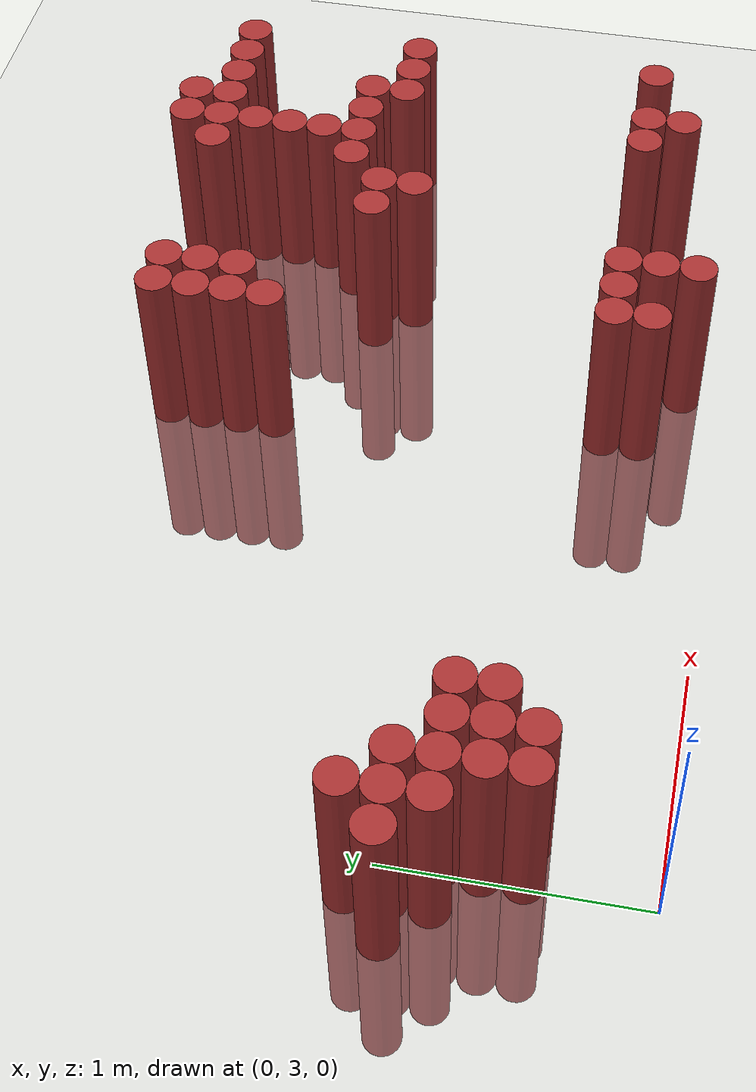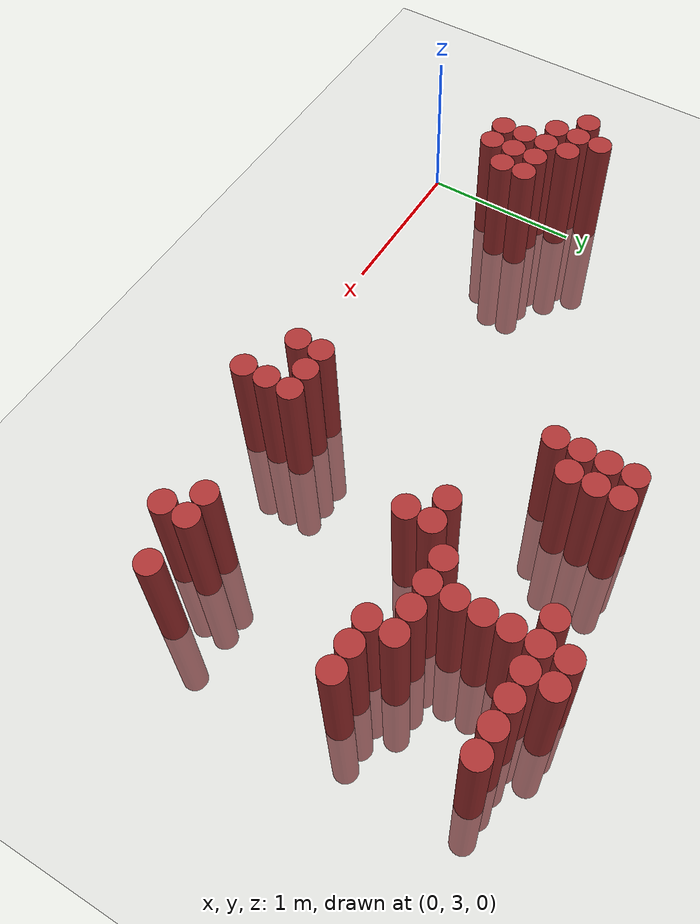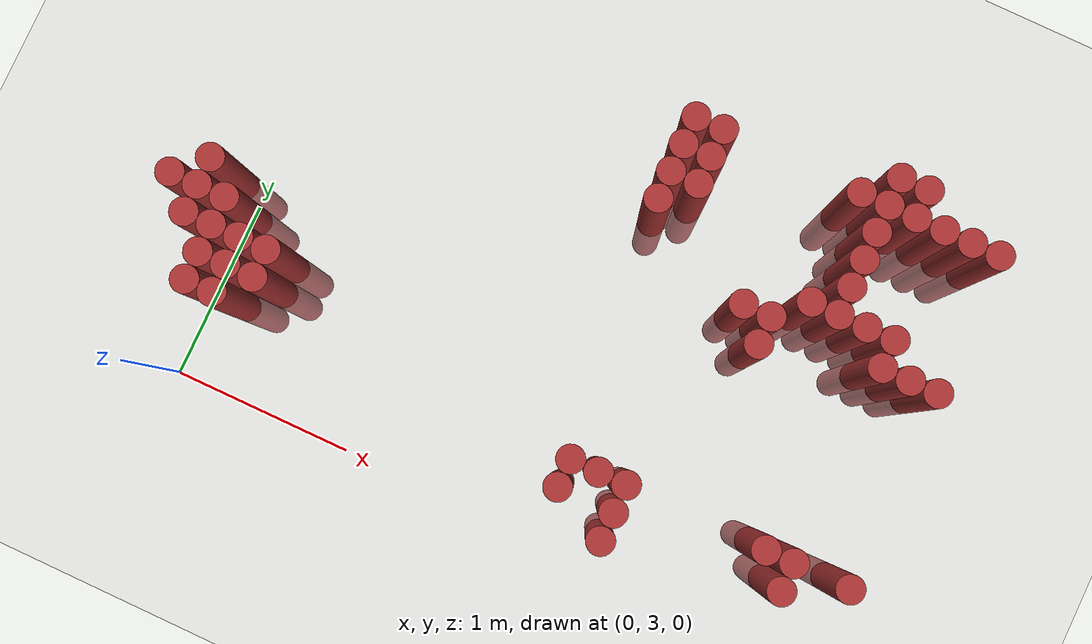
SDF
<sdf version="1.6">
 <world name="default">
  <model name="ground_plane">
   <static>1</static>
   <link name="link">
    <collision name="collision">
     <geometry><plane><normal>0 0 1</normal><size>100 100</size></plane></geometry>
     <surface><friction><ode><mu>100</mu><mu2>50</mu2></ode></friction></surface>
    </collision>
    <visual name="visual">
     <cast_shadows>0</cast_shadows>
     <geometry><plane><normal>0 0 1</normal><size>100 100</size></plane></geometry>
     <material>
      <script><uri>file://media/materials/scripts/gazebo.material</uri><name>Gazebo/Grey</name></script>
     </material>
    </visual>
   </link>
  </model>
  <model name="unit_cylinder_413">
   <static>1</static>
   <pose>-0.275000 3.925000 0.000000 0.000000 0.000000 0.000000</pose>
   <link name="link">
    <inertial>
     <mass>1</mass>
     <inertia><ixx>0.145833</ixx><ixy>0</ixy><ixz>0</ixz><iyy>0.145833</iyy><iyz>0</iyz><izz>0.125</izz></inertia>
    </inertial>
    <collision name="collision">
     <geometry><cylinder><radius>0.075000</radius><length>1.5</length></cylinder></geometry>
    </collision>
    <visual name="visual">
     <geometry><cylinder><radius>0.075000</radius><length>1.5</length></cylinder></geometry>
     <material>
      <ambient>0.648000 0.192000 0.192000 1</ambient>
      <diffuse>0.648000 0.192000 0.192000 1</diffuse>
     </material>
     <material>
      <script><name>Gazebo/Grey</name><uri>file://media/materials/scripts/gazebo.material</uri></script>
     </material>
    </visual>
   </link>
  </model>
  <model name="unit_cylinder_424">
   <static>1</static>
   <pose>-0.125000 3.775000 0.000000 0.000000 0.000000 0.000000</pose>
   <link name="link">
    <inertial>
     <mass>1</mass>
     <inertia><ixx>0.145833</ixx><ixy>0</ixy><ixz>0</ixz><iyy>0.145833</iyy><iyz>0</iyz><izz>0.125</izz></inertia>
    </inertial>
    <collision name="collision">
     <geometry><cylinder><radius>0.075000</radius><length>1.5</length></cylinder></geometry>
    </collision>
    <visual name="visual">
     <geometry><cylinder><radius>0.075000</radius><length>1.5</length></cylinder></geometry>
     <material>
      <ambient>0.648000 0.192000 0.192000 1</ambient>
      <diffuse>0.648000 0.192000 0.192000 1</diffuse>
     </material>
     <material>
      <script><name>Gazebo/Grey</name><uri>file://media/materials/scripts/gazebo.material</uri></script>
     </material>
    </visual>
   </link>
  </model>
  <model name="unit_cylinder_425">
   <static>1</static>
   <pose>-0.125000 3.925000 0.000000 0.000000 0.000000 0.000000</pose>
   <link name="link">
    <inertial>
     <mass>1</mass>
     <inertia><ixx>0.145833</ixx><ixy>0</ixy><ixz>0</ixz><iyy>0.145833</iyy><iyz>0</iyz><izz>0.125</izz></inertia>
    </inertial>
    <collision name="collision">
     <geometry><cylinder><radius>0.075000</radius><length>1.5</length></cylinder></geometry>
    </collision>
    <visual name="visual">
     <geometry><cylinder><radius>0.075000</radius><length>1.5</length></cylinder></geometry>
     <material>
      <ambient>0.648000 0.192000 0.192000 1</ambient>
      <diffuse>0.648000 0.192000 0.192000 1</diffuse>
     </material>
     <material>
      <script><name>Gazebo/Grey</name><uri>file://media/materials/scripts/gazebo.material</uri></script>
     </material>
    </visual>
   </link>
  </model>
  <model name="unit_cylinder_426">
   <static>1</static>
   <pose>-0.125000 4.075000 0.000000 0.000000 0.000000 0.000000</pose>
   <link name="link">
    <inertial>
     <mass>1</mass>
     <inertia><ixx>0.145833</ixx><ixy>0</ixy><ixz>0</ixz><iyy>0.145833</iyy><iyz>0</iyz><izz>0.125</izz></inertia>
    </inertial>
    <collision name="collision">
     <geometry><cylinder><radius>0.075000</radius><length>1.5</length></cylinder></geometry>
    </collision>
    <visual name="visual">
     <geometry><cylinder><radius>0.075000</radius><length>1.5</length></cylinder></geometry>
     <material>
      <ambient>0.648000 0.192000 0.192000 1</ambient>
      <diffuse>0.648000 0.192000 0.192000 1</diffuse>
     </material>
     <material>
      <script><name>Gazebo/Grey</name><uri>file://media/materials/scripts/gazebo.material</uri></script>
     </material>
    </visual>
   </link>
  </model>
  <model name="unit_cylinder_438">
   <static>1</static>
   <pose>0.025000 3.475000 0.000000 0.000000 0.000000 0.000000</pose>
   <link name="link">
    <inertial>
     <mass>1</mass>
     <inertia><ixx>0.145833</ixx><ixy>0</ixy><ixz>0</ixz><iyy>0.145833</iyy><iyz>0</iyz><izz>0.125</izz></inertia>
    </inertial>
    <collision name="collision">
     <geometry><cylinder><radius>0.075000</radius><length>1.5</length></cylinder></geometry>
    </collision>
    <visual name="visual">
     <geometry><cylinder><radius>0.075000</radius><length>1.5</length></cylinder></geometry>
     <material>
      <ambient>0.648000 0.192000 0.192000 1</ambient>
      <diffuse>0.648000 0.192000 0.192000 1</diffuse>
     </material>
     <material>
      <script><name>Gazebo/Grey</name><uri>file://media/materials/scripts/gazebo.material</uri></script>
     </material>
    </visual>
   </link>
  </model>
  <model name="unit_cylinder_439">
   <static>1</static>
   <pose>0.025000 3.625000 0.000000 0.000000 0.000000 0.000000</pose>
   <link name="link">
    <inertial>
     <mass>1</mass>
     <inertia><ixx>0.145833</ixx><ixy>0</ixy><ixz>0</ixz><iyy>0.145833</iyy><iyz>0</iyz><izz>0.125</izz></inertia>
    </inertial>
    <collision name="collision">
     <geometry><cylinder><radius>0.075000</radius><length>1.5</length></cylinder></geometry>
    </collision>
    <visual name="visual">
     <geometry><cylinder><radius>0.075000</radius><length>1.5</length></cylinder></geometry>
     <material>
      <ambient>0.648000 0.192000 0.192000 1</ambient>
      <diffuse>0.648000 0.192000 0.192000 1</diffuse>
     </material>
     <material>
      <script><name>Gazebo/Grey</name><uri>file://media/materials/scripts/gazebo.material</uri></script>
     </material>
    </visual>
   </link>
  </model>
  <model name="unit_cylinder_440">
   <static>1</static>
   <pose>0.025000 3.775000 0.000000 0.000000 0.000000 0.000000</pose>
   <link name="link">
    <inertial>
     <mass>1</mass>
     <inertia><ixx>0.145833</ixx><ixy>0</ixy><ixz>0</ixz><iyy>0.145833</iyy><iyz>0</iyz><izz>0.125</izz></inertia>
    </inertial>
    <collision name="collision">
     <geometry><cylinder><radius>0.075000</radius><length>1.5</length></cylinder></geometry>
    </collision>
    <visual name="visual">
     <geometry><cylinder><radius>0.075000</radius><length>1.5</length></cylinder></geometry>
     <material>
      <ambient>0.648000 0.192000 0.192000 1</ambient>
      <diffuse>0.648000 0.192000 0.192000 1</diffuse>
     </material>
     <material>
      <script><name>Gazebo/Grey</name><uri>file://media/materials/scripts/gazebo.material</uri></script>
     </material>
    </visual>
   </link>
  </model>
  <model name="unit_cylinder_441">
   <static>1</static>
   <pose>0.025000 3.925000 0.000000 0.000000 0.000000 0.000000</pose>
   <link name="link">
    <inertial>
     <mass>1</mass>
     <inertia><ixx>0.145833</ixx><ixy>0</ixy><ixz>0</ixz><iyy>0.145833</iyy><iyz>0</iyz><izz>0.125</izz></inertia>
    </inertial>
    <collision name="collision">
     <geometry><cylinder><radius>0.075000</radius><length>1.5</length></cylinder></geometry>
    </collision>
    <visual name="visual">
     <geometry><cylinder><radius>0.075000</radius><length>1.5</length></cylinder></geometry>
     <material>
      <ambient>0.648000 0.192000 0.192000 1</ambient>
      <diffuse>0.648000 0.192000 0.192000 1</diffuse>
     </material>
     <material>
      <script><name>Gazebo/Grey</name><uri>file://media/materials/scripts/gazebo.material</uri></script>
     </material>
    </visual>
   </link>
  </model>
  <model name="unit_cylinder_446">
   <static>1</static>
   <pose>0.175000 3.475000 0.000000 0.000000 0.000000 0.000000</pose>
   <link name="link">
    <inertial>
     <mass>1</mass>
     <inertia><ixx>0.145833</ixx><ixy>0</ixy><ixz>0</ixz><iyy>0.145833</iyy><iyz>0</iyz><izz>0.125</izz></inertia>
    </inertial>
    <collision name="collision">
     <geometry><cylinder><radius>0.075000</radius><length>1.5</length></cylinder></geometry>
    </collision>
    <visual name="visual">
     <geometry><cylinder><radius>0.075000</radius><length>1.5</length></cylinder></geometry>
     <material>
      <ambient>0.648000 0.192000 0.192000 1</ambient>
      <diffuse>0.648000 0.192000 0.192000 1</diffuse>
     </material>
     <material>
      <script><name>Gazebo/Grey</name><uri>file://media/materials/scripts/gazebo.material</uri></script>
     </material>
    </visual>
   </link>
  </model>
  <model name="unit_cylinder_447">
   <static>1</static>
   <pose>0.175000 3.625000 0.000000 0.000000 0.000000 0.000000</pose>
   <link name="link">
    <inertial>
     <mass>1</mass>
     <inertia><ixx>0.145833</ixx><ixy>0</ixy><ixz>0</ixz><iyy>0.145833</iyy><iyz>0</iyz><izz>0.125</izz></inertia>
    </inertial>
    <collision name="collision">
     <geometry><cylinder><radius>0.075000</radius><length>1.5</length></cylinder></geometry>
    </collision>
    <visual name="visual">
     <geometry><cylinder><radius>0.075000</radius><length>1.5</length></cylinder></geometry>
     <material>
      <ambient>0.648000 0.192000 0.192000 1</ambient>
      <diffuse>0.648000 0.192000 0.192000 1</diffuse>
     </material>
     <material>
      <script><name>Gazebo/Grey</name><uri>file://media/materials/scripts/gazebo.material</uri></script>
     </material>
    </visual>
   </link>
  </model>
  <model name="unit_cylinder_448">
   <static>1</static>
   <pose>0.175000 3.775000 0.000000 0.000000 0.000000 0.000000</pose>
   <link name="link">
    <inertial>
     <mass>1</mass>
     <inertia><ixx>0.145833</ixx><ixy>0</ixy><ixz>0</ixz><iyy>0.145833</iyy><iyz>0</iyz><izz>0.125</izz></inertia>
    </inertial>
    <collision name="collision">
     <geometry><cylinder><radius>0.075000</radius><length>1.5</length></cylinder></geometry>
    </collision>
    <visual name="visual">
     <geometry><cylinder><radius>0.075000</radius><length>1.5</length></cylinder></geometry>
     <material>
      <ambient>0.648000 0.192000 0.192000 1</ambient>
      <diffuse>0.648000 0.192000 0.192000 1</diffuse>
     </material>
     <material>
      <script><name>Gazebo/Grey</name><uri>file://media/materials/scripts/gazebo.material</uri></script>
     </material>
    </visual>
   </link>
  </model>
  <model name="unit_cylinder_450">
   <static>1</static>
   <pose>0.325000 3.625000 0.000000 0.000000 0.000000 0.000000</pose>
   <link name="link">
    <inertial>
     <mass>1</mass>
     <inertia><ixx>0.145833</ixx><ixy>0</ixy><ixz>0</ixz><iyy>0.145833</iyy><iyz>0</iyz><izz>0.125</izz></inertia>
    </inertial>
    <collision name="collision">
     <geometry><cylinder><radius>0.075000</radius><length>1.5</length></cylinder></geometry>
    </collision>
    <visual name="visual">
     <geometry><cylinder><radius>0.075000</radius><length>1.5</length></cylinder></geometry>
     <material>
      <ambient>0.648000 0.192000 0.192000 1</ambient>
      <diffuse>0.648000 0.192000 0.192000 1</diffuse>
     </material>
     <material>
      <script><name>Gazebo/Grey</name><uri>file://media/materials/scripts/gazebo.material</uri></script>
     </material>
    </visual>
   </link>
  </model>
  <model name="unit_cylinder_451">
   <static>1</static>
   <pose>0.325000 3.775000 0.000000 0.000000 0.000000 0.000000</pose>
   <link name="link">
    <inertial>
     <mass>1</mass>
     <inertia><ixx>0.145833</ixx><ixy>0</ixy><ixz>0</ixz><iyy>0.145833</iyy><iyz>0</iyz><izz>0.125</izz></inertia>
    </inertial>
    <collision name="collision">
     <geometry><cylinder><radius>0.075000</radius><length>1.5</length></cylinder></geometry>
    </collision>
    <visual name="visual">
     <geometry><cylinder><radius>0.075000</radius><length>1.5</length></cylinder></geometry>
     <material>
      <ambient>0.648000 0.192000 0.192000 1</ambient>
      <diffuse>0.648000 0.192000 0.192000 1</diffuse>
     </material>
     <material>
      <script><name>Gazebo/Grey</name><uri>file://media/materials/scripts/gazebo.material</uri></script>
     </material>
    </visual>
   </link>
  </model>
  <model name="unit_cylinder_470">
   <static>1</static>
   <pose>1.975000 4.825000 0.000000 0.000000 0.000000 0.000000</pose>
   <link name="link">
    <inertial>
     <mass>1</mass>
     <inertia><ixx>0.145833</ixx><ixy>0</ixy><ixz>0</ixz><iyy>0.145833</iyy><iyz>0</iyz><izz>0.125</izz></inertia>
    </inertial>
    <collision name="collision">
     <geometry><cylinder><radius>0.075000</radius><length>1.5</length></cylinder></geometry>
    </collision>
    <visual name="visual">
     <geometry><cylinder><radius>0.075000</radius><length>1.5</length></cylinder></geometry>
     <material>
      <ambient>0.648000 0.192000 0.192000 1</ambient>
      <diffuse>0.648000 0.192000 0.192000 1</diffuse>
     </material>
     <material>
      <script><name>Gazebo/Grey</name><uri>file://media/materials/scripts/gazebo.material</uri></script>
     </material>
    </visual>
   </link>
  </model>
  <model name="unit_cylinder_471">
   <static>1</static>
   <pose>1.975000 4.975000 0.000000 0.000000 0.000000 0.000000</pose>
   <link name="link">
    <inertial>
     <mass>1</mass>
     <inertia><ixx>0.145833</ixx><ixy>0</ixy><ixz>0</ixz><iyy>0.145833</iyy><iyz>0</iyz><izz>0.125</izz></inertia>
    </inertial>
    <collision name="collision">
     <geometry><cylinder><radius>0.075000</radius><length>1.5</length></cylinder></geometry>
    </collision>
    <visual name="visual">
     <geometry><cylinder><radius>0.075000</radius><length>1.5</length></cylinder></geometry>
     <material>
      <ambient>0.648000 0.192000 0.192000 1</ambient>
      <diffuse>0.648000 0.192000 0.192000 1</diffuse>
     </material>
     <material>
      <script><name>Gazebo/Grey</name><uri>file://media/materials/scripts/gazebo.material</uri></script>
     </material>
    </visual>
   </link>
  </model>
  <model name="unit_cylinder_472">
   <static>1</static>
   <pose>1.975000 5.125000 0.000000 0.000000 0.000000 0.000000</pose>
   <link name="link">
    <inertial>
     <mass>1</mass>
     <inertia><ixx>0.145833</ixx><ixy>0</ixy><ixz>0</ixz><iyy>0.145833</iyy><iyz>0</iyz><izz>0.125</izz></inertia>
    </inertial>
    <collision name="collision">
     <geometry><cylinder><radius>0.075000</radius><length>1.5</length></cylinder></geometry>
    </collision>
    <visual name="visual">
     <geometry><cylinder><radius>0.075000</radius><length>1.5</length></cylinder></geometry>
     <material>
      <ambient>0.648000 0.192000 0.192000 1</ambient>
      <diffuse>0.648000 0.192000 0.192000 1</diffuse>
     </material>
     <material>
      <script><name>Gazebo/Grey</name><uri>file://media/materials/scripts/gazebo.material</uri></script>
     </material>
    </visual>
   </link>
  </model>
  <model name="unit_cylinder_473">
   <static>1</static>
   <pose>1.975000 5.275000 0.000000 0.000000 0.000000 0.000000</pose>
   <link name="link">
    <inertial>
     <mass>1</mass>
     <inertia><ixx>0.145833</ixx><ixy>0</ixy><ixz>0</ixz><iyy>0.145833</iyy><iyz>0</iyz><izz>0.125</izz></inertia>
    </inertial>
    <collision name="collision">
     <geometry><cylinder><radius>0.075000</radius><length>1.5</length></cylinder></geometry>
    </collision>
    <visual name="visual">
     <geometry><cylinder><radius>0.075000</radius><length>1.5</length></cylinder></geometry>
     <material>
      <ambient>0.648000 0.192000 0.192000 1</ambient>
      <diffuse>0.648000 0.192000 0.192000 1</diffuse>
     </material>
     <material>
      <script><name>Gazebo/Grey</name><uri>file://media/materials/scripts/gazebo.material</uri></script>
     </material>
    </visual>
   </link>
  </model>
  <model name="unit_cylinder_477">
   <static>1</static>
   <pose>2.125000 3.325000 0.000000 0.000000 0.000000 0.000000</pose>
   <link name="link">
    <inertial>
     <mass>1</mass>
     <inertia><ixx>0.145833</ixx><ixy>0</ixy><ixz>0</ixz><iyy>0.145833</iyy><iyz>0</iyz><izz>0.125</izz></inertia>
    </inertial>
    <collision name="collision">
     <geometry><cylinder><radius>0.075000</radius><length>1.5</length></cylinder></geometry>
    </collision>
    <visual name="visual">
     <geometry><cylinder><radius>0.075000</radius><length>1.5</length></cylinder></geometry>
     <material>
      <ambient>0.648000 0.192000 0.192000 1</ambient>
      <diffuse>0.648000 0.192000 0.192000 1</diffuse>
     </material>
     <material>
      <script><name>Gazebo/Grey</name><uri>file://media/materials/scripts/gazebo.material</uri></script>
     </material>
    </visual>
   </link>
  </model>
  <model name="unit_cylinder_478">
   <static>1</static>
   <pose>2.125000 3.475000 0.000000 0.000000 0.000000 0.000000</pose>
   <link name="link">
    <inertial>
     <mass>1</mass>
     <inertia><ixx>0.145833</ixx><ixy>0</ixy><ixz>0</ixz><iyy>0.145833</iyy><iyz>0</iyz><izz>0.125</izz></inertia>
    </inertial>
    <collision name="collision">
     <geometry><cylinder><radius>0.075000</radius><length>1.5</length></cylinder></geometry>
    </collision>
    <visual name="visual">
     <geometry><cylinder><radius>0.075000</radius><length>1.5</length></cylinder></geometry>
     <material>
      <ambient>0.648000 0.192000 0.192000 1</ambient>
      <diffuse>0.648000 0.192000 0.192000 1</diffuse>
     </material>
     <material>
      <script><name>Gazebo/Grey</name><uri>file://media/materials/scripts/gazebo.material</uri></script>
     </material>
    </visual>
   </link>
  </model>
  <model name="unit_cylinder_479">
   <static>1</static>
   <pose>2.125000 4.975000 0.000000 0.000000 0.000000 0.000000</pose>
   <link name="link">
    <inertial>
     <mass>1</mass>
     <inertia><ixx>0.145833</ixx><ixy>0</ixy><ixz>0</ixz><iyy>0.145833</iyy><iyz>0</iyz><izz>0.125</izz></inertia>
    </inertial>
    <collision name="collision">
     <geometry><cylinder><radius>0.075000</radius><length>1.5</length></cylinder></geometry>
    </collision>
    <visual name="visual">
     <geometry><cylinder><radius>0.075000</radius><length>1.5</length></cylinder></geometry>
     <material>
      <ambient>0.648000 0.192000 0.192000 1</ambient>
      <diffuse>0.648000 0.192000 0.192000 1</diffuse>
     </material>
     <material>
      <script><name>Gazebo/Grey</name><uri>file://media/materials/scripts/gazebo.material</uri></script>
     </material>
    </visual>
   </link>
  </model>
  <model name="unit_cylinder_480">
   <static>1</static>
   <pose>2.125000 5.125000 0.000000 0.000000 0.000000 0.000000</pose>
   <link name="link">
    <inertial>
     <mass>1</mass>
     <inertia><ixx>0.145833</ixx><ixy>0</ixy><ixz>0</ixz><iyy>0.145833</iyy><iyz>0</iyz><izz>0.125</izz></inertia>
    </inertial>
    <collision name="collision">
     <geometry><cylinder><radius>0.075000</radius><length>1.5</length></cylinder></geometry>
    </collision>
    <visual name="visual">
     <geometry><cylinder><radius>0.075000</radius><length>1.5</length></cylinder></geometry>
     <material>
      <ambient>0.648000 0.192000 0.192000 1</ambient>
      <diffuse>0.648000 0.192000 0.192000 1</diffuse>
     </material>
     <material>
      <script><name>Gazebo/Grey</name><uri>file://media/materials/scripts/gazebo.material</uri></script>
     </material>
    </visual>
   </link>
  </model>
  <model name="unit_cylinder_481">
   <static>1</static>
   <pose>2.125000 5.275000 0.000000 0.000000 0.000000 0.000000</pose>
   <link name="link">
    <inertial>
     <mass>1</mass>
     <inertia><ixx>0.145833</ixx><ixy>0</ixy><ixz>0</ixz><iyy>0.145833</iyy><iyz>0</iyz><izz>0.125</izz></inertia>
    </inertial>
    <collision name="collision">
     <geometry><cylinder><radius>0.075000</radius><length>1.5</length></cylinder></geometry>
    </collision>
    <visual name="visual">
     <geometry><cylinder><radius>0.075000</radius><length>1.5</length></cylinder></geometry>
     <material>
      <ambient>0.648000 0.192000 0.192000 1</ambient>
      <diffuse>0.648000 0.192000 0.192000 1</diffuse>
     </material>
     <material>
      <script><name>Gazebo/Grey</name><uri>file://media/materials/scripts/gazebo.material</uri></script>
     </material>
    </visual>
   </link>
  </model>
  <model name="unit_cylinder_484">
   <static>1</static>
   <pose>2.275000 3.475000 0.000000 0.000000 0.000000 0.000000</pose>
   <link name="link">
    <inertial>
     <mass>1</mass>
     <inertia><ixx>0.145833</ixx><ixy>0</ixy><ixz>0</ixz><iyy>0.145833</iyy><iyz>0</iyz><izz>0.125</izz></inertia>
    </inertial>
    <collision name="collision">
     <geometry><cylinder><radius>0.075000</radius><length>1.5</length></cylinder></geometry>
    </collision>
    <visual name="visual">
     <geometry><cylinder><radius>0.075000</radius><length>1.5</length></cylinder></geometry>
     <material>
      <ambient>0.648000 0.192000 0.192000 1</ambient>
      <diffuse>0.648000 0.192000 0.192000 1</diffuse>
     </material>
     <material>
      <script><name>Gazebo/Grey</name><uri>file://media/materials/scripts/gazebo.material</uri></script>
     </material>
    </visual>
   </link>
  </model>
  <model name="unit_cylinder_488">
   <static>1</static>
   <pose>2.425000 3.175000 0.000000 0.000000 0.000000 0.000000</pose>
   <link name="link">
    <inertial>
     <mass>1</mass>
     <inertia><ixx>0.145833</ixx><ixy>0</ixy><ixz>0</ixz><iyy>0.145833</iyy><iyz>0</iyz><izz>0.125</izz></inertia>
    </inertial>
    <collision name="collision">
     <geometry><cylinder><radius>0.075000</radius><length>1.5</length></cylinder></geometry>
    </collision>
    <visual name="visual">
     <geometry><cylinder><radius>0.075000</radius><length>1.5</length></cylinder></geometry>
     <material>
      <ambient>0.648000 0.192000 0.192000 1</ambient>
      <diffuse>0.648000 0.192000 0.192000 1</diffuse>
     </material>
     <material>
      <script><name>Gazebo/Grey</name><uri>file://media/materials/scripts/gazebo.material</uri></script>
     </material>
    </visual>
   </link>
  </model>
  <model name="unit_cylinder_489">
   <static>1</static>
   <pose>2.425000 3.325000 0.000000 0.000000 0.000000 0.000000</pose>
   <link name="link">
    <inertial>
     <mass>1</mass>
     <inertia><ixx>0.145833</ixx><ixy>0</ixy><ixz>0</ixz><iyy>0.145833</iyy><iyz>0</iyz><izz>0.125</izz></inertia>
    </inertial>
    <collision name="collision">
     <geometry><cylinder><radius>0.075000</radius><length>1.5</length></cylinder></geometry>
    </collision>
    <visual name="visual">
     <geometry><cylinder><radius>0.075000</radius><length>1.5</length></cylinder></geometry>
     <material>
      <ambient>0.648000 0.192000 0.192000 1</ambient>
      <diffuse>0.648000 0.192000 0.192000 1</diffuse>
     </material>
     <material>
      <script><name>Gazebo/Grey</name><uri>file://media/materials/scripts/gazebo.material</uri></script>
     </material>
    </visual>
   </link>
  </model>
  <model name="unit_cylinder_490">
   <static>1</static>
   <pose>2.425000 3.475000 0.000000 0.000000 0.000000 0.000000</pose>
   <link name="link">
    <inertial>
     <mass>1</mass>
     <inertia><ixx>0.145833</ixx><ixy>0</ixy><ixz>0</ixz><iyy>0.145833</iyy><iyz>0</iyz><izz>0.125</izz></inertia>
    </inertial>
    <collision name="collision">
     <geometry><cylinder><radius>0.075000</radius><length>1.5</length></cylinder></geometry>
    </collision>
    <visual name="visual">
     <geometry><cylinder><radius>0.075000</radius><length>1.5</length></cylinder></geometry>
     <material>
      <ambient>0.648000 0.192000 0.192000 1</ambient>
      <diffuse>0.648000 0.192000 0.192000 1</diffuse>
     </material>
     <material>
      <script><name>Gazebo/Grey</name><uri>file://media/materials/scripts/gazebo.material</uri></script>
     </material>
    </visual>
   </link>
  </model>
  <model name="unit_cylinder_491">
   <static>1</static>
   <pose>2.575000 4.525000 0.000000 0.000000 0.000000 0.000000</pose>
   <link name="link">
    <inertial>
     <mass>1</mass>
     <inertia><ixx>0.145833</ixx><ixy>0</ixy><ixz>0</ixz><iyy>0.145833</iyy><iyz>0</iyz><izz>0.125</izz></inertia>
    </inertial>
    <collision name="collision">
     <geometry><cylinder><radius>0.075000</radius><length>1.5</length></cylinder></geometry>
    </collision>
    <visual name="visual">
     <geometry><cylinder><radius>0.075000</radius><length>1.5</length></cylinder></geometry>
     <material>
      <ambient>0.648000 0.192000 0.192000 1</ambient>
      <diffuse>0.648000 0.192000 0.192000 1</diffuse>
     </material>
     <material>
      <script><name>Gazebo/Grey</name><uri>file://media/materials/scripts/gazebo.material</uri></script>
     </material>
    </visual>
   </link>
  </model>
  <model name="unit_cylinder_492">
   <static>1</static>
   <pose>2.725000 4.375000 0.000000 0.000000 0.000000 0.000000</pose>
   <link name="link">
    <inertial>
     <mass>1</mass>
     <inertia><ixx>0.145833</ixx><ixy>0</ixy><ixz>0</ixz><iyy>0.145833</iyy><iyz>0</iyz><izz>0.125</izz></inertia>
    </inertial>
    <collision name="collision">
     <geometry><cylinder><radius>0.075000</radius><length>1.5</length></cylinder></geometry>
    </collision>
    <visual name="visual">
     <geometry><cylinder><radius>0.075000</radius><length>1.5</length></cylinder></geometry>
     <material>
      <ambient>0.648000 0.192000 0.192000 1</ambient>
      <diffuse>0.648000 0.192000 0.192000 1</diffuse>
     </material>
     <material>
      <script><name>Gazebo/Grey</name><uri>file://media/materials/scripts/gazebo.material</uri></script>
     </material>
    </visual>
   </link>
  </model>
  <model name="unit_cylinder_493">
   <static>1</static>
   <pose>2.725000 4.525000 0.000000 0.000000 0.000000 0.000000</pose>
   <link name="link">
    <inertial>
     <mass>1</mass>
     <inertia><ixx>0.145833</ixx><ixy>0</ixy><ixz>0</ixz><iyy>0.145833</iyy><iyz>0</iyz><izz>0.125</izz></inertia>
    </inertial>
    <collision name="collision">
     <geometry><cylinder><radius>0.075000</radius><length>1.5</length></cylinder></geometry>
    </collision>
    <visual name="visual">
     <geometry><cylinder><radius>0.075000</radius><length>1.5</length></cylinder></geometry>
     <material>
      <ambient>0.648000 0.192000 0.192000 1</ambient>
      <diffuse>0.648000 0.192000 0.192000 1</diffuse>
     </material>
     <material>
      <script><name>Gazebo/Grey</name><uri>file://media/materials/scripts/gazebo.material</uri></script>
     </material>
    </visual>
   </link>
  </model>
  <model name="unit_cylinder_494">
   <static>1</static>
   <pose>2.875000 4.675000 0.000000 0.000000 0.000000 0.000000</pose>
   <link name="link">
    <inertial>
     <mass>1</mass>
     <inertia><ixx>0.145833</ixx><ixy>0</ixy><ixz>0</ixz><iyy>0.145833</iyy><iyz>0</iyz><izz>0.125</izz></inertia>
    </inertial>
    <collision name="collision">
     <geometry><cylinder><radius>0.075000</radius><length>1.5</length></cylinder></geometry>
    </collision>
    <visual name="visual">
     <geometry><cylinder><radius>0.075000</radius><length>1.5</length></cylinder></geometry>
     <material>
      <ambient>0.648000 0.192000 0.192000 1</ambient>
      <diffuse>0.648000 0.192000 0.192000 1</diffuse>
     </material>
     <material>
      <script><name>Gazebo/Grey</name><uri>file://media/materials/scripts/gazebo.material</uri></script>
     </material>
    </visual>
   </link>
  </model>
  <model name="unit_cylinder_495">
   <static>1</static>
   <pose>2.875000 5.275000 0.000000 0.000000 0.000000 0.000000</pose>
   <link name="link">
    <inertial>
     <mass>1</mass>
     <inertia><ixx>0.145833</ixx><ixy>0</ixy><ixz>0</ixz><iyy>0.145833</iyy><iyz>0</iyz><izz>0.125</izz></inertia>
    </inertial>
    <collision name="collision">
     <geometry><cylinder><radius>0.075000</radius><length>1.5</length></cylinder></geometry>
    </collision>
    <visual name="visual">
     <geometry><cylinder><radius>0.075000</radius><length>1.5</length></cylinder></geometry>
     <material>
      <ambient>0.648000 0.192000 0.192000 1</ambient>
      <diffuse>0.648000 0.192000 0.192000 1</diffuse>
     </material>
     <material>
      <script><name>Gazebo/Grey</name><uri>file://media/materials/scripts/gazebo.material</uri></script>
     </material>
    </visual>
   </link>
  </model>
  <model name="unit_cylinder_498">
   <static>1</static>
   <pose>3.025000 4.675000 0.000000 0.000000 0.000000 0.000000</pose>
   <link name="link">
    <inertial>
     <mass>1</mass>
     <inertia><ixx>0.145833</ixx><ixy>0</ixy><ixz>0</ixz><iyy>0.145833</iyy><iyz>0</iyz><izz>0.125</izz></inertia>
    </inertial>
    <collision name="collision">
     <geometry><cylinder><radius>0.075000</radius><length>1.5</length></cylinder></geometry>
    </collision>
    <visual name="visual">
     <geometry><cylinder><radius>0.075000</radius><length>1.5</length></cylinder></geometry>
     <material>
      <ambient>0.648000 0.192000 0.192000 1</ambient>
      <diffuse>0.648000 0.192000 0.192000 1</diffuse>
     </material>
     <material>
      <script><name>Gazebo/Grey</name><uri>file://media/materials/scripts/gazebo.material</uri></script>
     </material>
    </visual>
   </link>
  </model>
  <model name="unit_cylinder_499">
   <static>1</static>
   <pose>3.025000 4.825000 0.000000 0.000000 0.000000 0.000000</pose>
   <link name="link">
    <inertial>
     <mass>1</mass>
     <inertia><ixx>0.145833</ixx><ixy>0</ixy><ixz>0</ixz><iyy>0.145833</iyy><iyz>0</iyz><izz>0.125</izz></inertia>
    </inertial>
    <collision name="collision">
     <geometry><cylinder><radius>0.075000</radius><length>1.5</length></cylinder></geometry>
    </collision>
    <visual name="visual">
     <geometry><cylinder><radius>0.075000</radius><length>1.5</length></cylinder></geometry>
     <material>
      <ambient>0.648000 0.192000 0.192000 1</ambient>
      <diffuse>0.648000 0.192000 0.192000 1</diffuse>
     </material>
     <material>
      <script><name>Gazebo/Grey</name><uri>file://media/materials/scripts/gazebo.material</uri></script>
     </material>
    </visual>
   </link>
  </model>
  <model name="unit_cylinder_500">
   <static>1</static>
   <pose>3.025000 4.975000 0.000000 0.000000 0.000000 0.000000</pose>
   <link name="link">
    <inertial>
     <mass>1</mass>
     <inertia><ixx>0.145833</ixx><ixy>0</ixy><ixz>0</ixz><iyy>0.145833</iyy><iyz>0</iyz><izz>0.125</izz></inertia>
    </inertial>
    <collision name="collision">
     <geometry><cylinder><radius>0.075000</radius><length>1.5</length></cylinder></geometry>
    </collision>
    <visual name="visual">
     <geometry><cylinder><radius>0.075000</radius><length>1.5</length></cylinder></geometry>
     <material>
      <ambient>0.648000 0.192000 0.192000 1</ambient>
      <diffuse>0.648000 0.192000 0.192000 1</diffuse>
     </material>
     <material>
      <script><name>Gazebo/Grey</name><uri>file://media/materials/scripts/gazebo.material</uri></script>
     </material>
    </visual>
   </link>
  </model>
  <model name="unit_cylinder_501">
   <static>1</static>
   <pose>3.025000 5.125000 0.000000 0.000000 0.000000 0.000000</pose>
   <link name="link">
    <inertial>
     <mass>1</mass>
     <inertia><ixx>0.145833</ixx><ixy>0</ixy><ixz>0</ixz><iyy>0.145833</iyy><iyz>0</iyz><izz>0.125</izz></inertia>
    </inertial>
    <collision name="collision">
     <geometry><cylinder><radius>0.075000</radius><length>1.5</length></cylinder></geometry>
    </collision>
    <visual name="visual">
     <geometry><cylinder><radius>0.075000</radius><length>1.5</length></cylinder></geometry>
     <material>
      <ambient>0.648000 0.192000 0.192000 1</ambient>
      <diffuse>0.648000 0.192000 0.192000 1</diffuse>
     </material>
     <material>
      <script><name>Gazebo/Grey</name><uri>file://media/materials/scripts/gazebo.material</uri></script>
     </material>
    </visual>
   </link>
  </model>
  <model name="unit_cylinder_502">
   <static>1</static>
   <pose>3.025000 5.275000 0.000000 0.000000 0.000000 0.000000</pose>
   <link name="link">
    <inertial>
     <mass>1</mass>
     <inertia><ixx>0.145833</ixx><ixy>0</ixy><ixz>0</ixz><iyy>0.145833</iyy><iyz>0</iyz><izz>0.125</izz></inertia>
    </inertial>
    <collision name="collision">
     <geometry><cylinder><radius>0.075000</radius><length>1.5</length></cylinder></geometry>
    </collision>
    <visual name="visual">
     <geometry><cylinder><radius>0.075000</radius><length>1.5</length></cylinder></geometry>
     <material>
      <ambient>0.648000 0.192000 0.192000 1</ambient>
      <diffuse>0.648000 0.192000 0.192000 1</diffuse>
     </material>
     <material>
      <script><name>Gazebo/Grey</name><uri>file://media/materials/scripts/gazebo.material</uri></script>
     </material>
    </visual>
   </link>
  </model>
  <model name="unit_cylinder_503">
   <static>1</static>
   <pose>3.025000 5.425000 0.000000 0.000000 0.000000 0.000000</pose>
   <link name="link">
    <inertial>
     <mass>1</mass>
     <inertia><ixx>0.145833</ixx><ixy>0</ixy><ixz>0</ixz><iyy>0.145833</iyy><iyz>0</iyz><izz>0.125</izz></inertia>
    </inertial>
    <collision name="collision">
     <geometry><cylinder><radius>0.075000</radius><length>1.5</length></cylinder></geometry>
    </collision>
    <visual name="visual">
     <geometry><cylinder><radius>0.075000</radius><length>1.5</length></cylinder></geometry>
     <material>
      <ambient>0.648000 0.192000 0.192000 1</ambient>
      <diffuse>0.648000 0.192000 0.192000 1</diffuse>
     </material>
     <material>
      <script><name>Gazebo/Grey</name><uri>file://media/materials/scripts/gazebo.material</uri></script>
     </material>
    </visual>
   </link>
  </model>
  <model name="unit_cylinder_506">
   <static>1</static>
   <pose>3.175000 3.475000 0.000000 0.000000 0.000000 0.000000</pose>
   <link name="link">
    <inertial>
     <mass>1</mass>
     <inertia><ixx>0.145833</ixx><ixy>0</ixy><ixz>0</ixz><iyy>0.145833</iyy><iyz>0</iyz><izz>0.125</izz></inertia>
    </inertial>
    <collision name="collision">
     <geometry><cylinder><radius>0.075000</radius><length>1.5</length></cylinder></geometry>
    </collision>
    <visual name="visual">
     <geometry><cylinder><radius>0.075000</radius><length>1.5</length></cylinder></geometry>
     <material>
      <ambient>0.648000 0.192000 0.192000 1</ambient>
      <diffuse>0.648000 0.192000 0.192000 1</diffuse>
     </material>
     <material>
      <script><name>Gazebo/Grey</name><uri>file://media/materials/scripts/gazebo.material</uri></script>
     </material>
    </visual>
   </link>
  </model>
  <model name="unit_cylinder_507">
   <static>1</static>
   <pose>3.175000 4.675000 0.000000 0.000000 0.000000 0.000000</pose>
   <link name="link">
    <inertial>
     <mass>1</mass>
     <inertia><ixx>0.145833</ixx><ixy>0</ixy><ixz>0</ixz><iyy>0.145833</iyy><iyz>0</iyz><izz>0.125</izz></inertia>
    </inertial>
    <collision name="collision">
     <geometry><cylinder><radius>0.075000</radius><length>1.5</length></cylinder></geometry>
    </collision>
    <visual name="visual">
     <geometry><cylinder><radius>0.075000</radius><length>1.5</length></cylinder></geometry>
     <material>
      <ambient>0.648000 0.192000 0.192000 1</ambient>
      <diffuse>0.648000 0.192000 0.192000 1</diffuse>
     </material>
     <material>
      <script><name>Gazebo/Grey</name><uri>file://media/materials/scripts/gazebo.material</uri></script>
     </material>
    </visual>
   </link>
  </model>
  <model name="unit_cylinder_508">
   <static>1</static>
   <pose>3.175000 5.275000 0.000000 0.000000 0.000000 0.000000</pose>
   <link name="link">
    <inertial>
     <mass>1</mass>
     <inertia><ixx>0.145833</ixx><ixy>0</ixy><ixz>0</ixz><iyy>0.145833</iyy><iyz>0</iyz><izz>0.125</izz></inertia>
    </inertial>
    <collision name="collision">
     <geometry><cylinder><radius>0.075000</radius><length>1.5</length></cylinder></geometry>
    </collision>
    <visual name="visual">
     <geometry><cylinder><radius>0.075000</radius><length>1.5</length></cylinder></geometry>
     <material>
      <ambient>0.648000 0.192000 0.192000 1</ambient>
      <diffuse>0.648000 0.192000 0.192000 1</diffuse>
     </material>
     <material>
      <script><name>Gazebo/Grey</name><uri>file://media/materials/scripts/gazebo.material</uri></script>
     </material>
    </visual>
   </link>
  </model>
  <model name="unit_cylinder_509">
   <static>1</static>
   <pose>3.175000 5.425000 0.000000 0.000000 0.000000 0.000000</pose>
   <link name="link">
    <inertial>
     <mass>1</mass>
     <inertia><ixx>0.145833</ixx><ixy>0</ixy><ixz>0</ixz><iyy>0.145833</iyy><iyz>0</iyz><izz>0.125</izz></inertia>
    </inertial>
    <collision name="collision">
     <geometry><cylinder><radius>0.075000</radius><length>1.5</length></cylinder></geometry>
    </collision>
    <visual name="visual">
     <geometry><cylinder><radius>0.075000</radius><length>1.5</length></cylinder></geometry>
     <material>
      <ambient>0.648000 0.192000 0.192000 1</ambient>
      <diffuse>0.648000 0.192000 0.192000 1</diffuse>
     </material>
     <material>
      <script><name>Gazebo/Grey</name><uri>file://media/materials/scripts/gazebo.material</uri></script>
     </material>
    </visual>
   </link>
  </model>
  <model name="unit_cylinder_513">
   <static>1</static>
   <pose>3.325000 3.325000 0.000000 0.000000 0.000000 0.000000</pose>
   <link name="link">
    <inertial>
     <mass>1</mass>
     <inertia><ixx>0.145833</ixx><ixy>0</ixy><ixz>0</ixz><iyy>0.145833</iyy><iyz>0</iyz><izz>0.125</izz></inertia>
    </inertial>
    <collision name="collision">
     <geometry><cylinder><radius>0.075000</radius><length>1.5</length></cylinder></geometry>
    </collision>
    <visual name="visual">
     <geometry><cylinder><radius>0.075000</radius><length>1.5</length></cylinder></geometry>
     <material>
      <ambient>0.648000 0.192000 0.192000 1</ambient>
      <diffuse>0.648000 0.192000 0.192000 1</diffuse>
     </material>
     <material>
      <script><name>Gazebo/Grey</name><uri>file://media/materials/scripts/gazebo.material</uri></script>
     </material>
    </visual>
   </link>
  </model>
  <model name="unit_cylinder_514">
   <static>1</static>
   <pose>3.325000 3.475000 0.000000 0.000000 0.000000 0.000000</pose>
   <link name="link">
    <inertial>
     <mass>1</mass>
     <inertia><ixx>0.145833</ixx><ixy>0</ixy><ixz>0</ixz><iyy>0.145833</iyy><iyz>0</iyz><izz>0.125</izz></inertia>
    </inertial>
    <collision name="collision">
     <geometry><cylinder><radius>0.075000</radius><length>1.5</length></cylinder></geometry>
    </collision>
    <visual name="visual">
     <geometry><cylinder><radius>0.075000</radius><length>1.5</length></cylinder></geometry>
     <material>
      <ambient>0.648000 0.192000 0.192000 1</ambient>
      <diffuse>0.648000 0.192000 0.192000 1</diffuse>
     </material>
     <material>
      <script><name>Gazebo/Grey</name><uri>file://media/materials/scripts/gazebo.material</uri></script>
     </material>
    </visual>
   </link>
  </model>
  <model name="unit_cylinder_515">
   <static>1</static>
   <pose>3.325000 4.525000 0.000000 0.000000 0.000000 0.000000</pose>
   <link name="link">
    <inertial>
     <mass>1</mass>
     <inertia><ixx>0.145833</ixx><ixy>0</ixy><ixz>0</ixz><iyy>0.145833</iyy><iyz>0</iyz><izz>0.125</izz></inertia>
    </inertial>
    <collision name="collision">
     <geometry><cylinder><radius>0.075000</radius><length>1.5</length></cylinder></geometry>
    </collision>
    <visual name="visual">
     <geometry><cylinder><radius>0.075000</radius><length>1.5</length></cylinder></geometry>
     <material>
      <ambient>0.648000 0.192000 0.192000 1</ambient>
      <diffuse>0.648000 0.192000 0.192000 1</diffuse>
     </material>
     <material>
      <script><name>Gazebo/Grey</name><uri>file://media/materials/scripts/gazebo.material</uri></script>
     </material>
    </visual>
   </link>
  </model>
  <model name="unit_cylinder_516">
   <static>1</static>
   <pose>3.325000 4.675000 0.000000 0.000000 0.000000 0.000000</pose>
   <link name="link">
    <inertial>
     <mass>1</mass>
     <inertia><ixx>0.145833</ixx><ixy>0</ixy><ixz>0</ixz><iyy>0.145833</iyy><iyz>0</iyz><izz>0.125</izz></inertia>
    </inertial>
    <collision name="collision">
     <geometry><cylinder><radius>0.075000</radius><length>1.5</length></cylinder></geometry>
    </collision>
    <visual name="visual">
     <geometry><cylinder><radius>0.075000</radius><length>1.5</length></cylinder></geometry>
     <material>
      <ambient>0.648000 0.192000 0.192000 1</ambient>
      <diffuse>0.648000 0.192000 0.192000 1</diffuse>
     </material>
     <material>
      <script><name>Gazebo/Grey</name><uri>file://media/materials/scripts/gazebo.material</uri></script>
     </material>
    </visual>
   </link>
  </model>
  <model name="unit_cylinder_517">
   <static>1</static>
   <pose>3.325000 5.275000 0.000000 0.000000 0.000000 0.000000</pose>
   <link name="link">
    <inertial>
     <mass>1</mass>
     <inertia><ixx>0.145833</ixx><ixy>0</ixy><ixz>0</ixz><iyy>0.145833</iyy><iyz>0</iyz><izz>0.125</izz></inertia>
    </inertial>
    <collision name="collision">
     <geometry><cylinder><radius>0.075000</radius><length>1.5</length></cylinder></geometry>
    </collision>
    <visual name="visual">
     <geometry><cylinder><radius>0.075000</radius><length>1.5</length></cylinder></geometry>
     <material>
      <ambient>0.648000 0.192000 0.192000 1</ambient>
      <diffuse>0.648000 0.192000 0.192000 1</diffuse>
     </material>
     <material>
      <script><name>Gazebo/Grey</name><uri>file://media/materials/scripts/gazebo.material</uri></script>
     </material>
    </visual>
   </link>
  </model>
  <model name="unit_cylinder_522">
   <static>1</static>
   <pose>3.475000 4.525000 0.000000 0.000000 0.000000 0.000000</pose>
   <link name="link">
    <inertial>
     <mass>1</mass>
     <inertia><ixx>0.145833</ixx><ixy>0</ixy><ixz>0</ixz><iyy>0.145833</iyy><iyz>0</iyz><izz>0.125</izz></inertia>
    </inertial>
    <collision name="collision">
     <geometry><cylinder><radius>0.075000</radius><length>1.5</length></cylinder></geometry>
    </collision>
    <visual name="visual">
     <geometry><cylinder><radius>0.075000</radius><length>1.5</length></cylinder></geometry>
     <material>
      <ambient>0.648000 0.192000 0.192000 1</ambient>
      <diffuse>0.648000 0.192000 0.192000 1</diffuse>
     </material>
     <material>
      <script><name>Gazebo/Grey</name><uri>file://media/materials/scripts/gazebo.material</uri></script>
     </material>
    </visual>
   </link>
  </model>
  <model name="unit_cylinder_523">
   <static>1</static>
   <pose>3.475000 5.275000 0.000000 0.000000 0.000000 0.000000</pose>
   <link name="link">
    <inertial>
     <mass>1</mass>
     <inertia><ixx>0.145833</ixx><ixy>0</ixy><ixz>0</ixz><iyy>0.145833</iyy><iyz>0</iyz><izz>0.125</izz></inertia>
    </inertial>
    <collision name="collision">
     <geometry><cylinder><radius>0.075000</radius><length>1.5</length></cylinder></geometry>
    </collision>
    <visual name="visual">
     <geometry><cylinder><radius>0.075000</radius><length>1.5</length></cylinder></geometry>
     <material>
      <ambient>0.648000 0.192000 0.192000 1</ambient>
      <diffuse>0.648000 0.192000 0.192000 1</diffuse>
     </material>
     <material>
      <script><name>Gazebo/Grey</name><uri>file://media/materials/scripts/gazebo.material</uri></script>
     </material>
    </visual>
   </link>
  </model>
  <model name="unit_cylinder_533">
   <static>1</static>
   <pose>3.625000 3.475000 0.000000 0.000000 0.000000 0.000000</pose>
   <link name="link">
    <inertial>
     <mass>1</mass>
     <inertia><ixx>0.145833</ixx><ixy>0</ixy><ixz>0</ixz><iyy>0.145833</iyy><iyz>0</iyz><izz>0.125</izz></inertia>
    </inertial>
    <collision name="collision">
     <geometry><cylinder><radius>0.075000</radius><length>1.5</length></cylinder></geometry>
    </collision>
    <visual name="visual">
     <geometry><cylinder><radius>0.075000</radius><length>1.5</length></cylinder></geometry>
     <material>
      <ambient>0.648000 0.192000 0.192000 1</ambient>
      <diffuse>0.648000 0.192000 0.192000 1</diffuse>
     </material>
     <material>
      <script><name>Gazebo/Grey</name><uri>file://media/materials/scripts/gazebo.material</uri></script>
     </material>
    </visual>
   </link>
  </model>
  <model name="unit_cylinder_534">
   <static>1</static>
   <pose>3.625000 4.525000 0.000000 0.000000 0.000000 0.000000</pose>
   <link name="link">
    <inertial>
     <mass>1</mass>
     <inertia><ixx>0.145833</ixx><ixy>0</ixy><ixz>0</ixz><iyy>0.145833</iyy><iyz>0</iyz><izz>0.125</izz></inertia>
    </inertial>
    <collision name="collision">
     <geometry><cylinder><radius>0.075000</radius><length>1.5</length></cylinder></geometry>
    </collision>
    <visual name="visual">
     <geometry><cylinder><radius>0.075000</radius><length>1.5</length></cylinder></geometry>
     <material>
      <ambient>0.648000 0.192000 0.192000 1</ambient>
      <diffuse>0.648000 0.192000 0.192000 1</diffuse>
     </material>
     <material>
      <script><name>Gazebo/Grey</name><uri>file://media/materials/scripts/gazebo.material</uri></script>
     </material>
    </visual>
   </link>
  </model>
  <model name="unit_cylinder_535">
   <static>1</static>
   <pose>3.625000 5.275000 0.000000 0.000000 0.000000 0.000000</pose>
   <link name="link">
    <inertial>
     <mass>1</mass>
     <inertia><ixx>0.145833</ixx><ixy>0</ixy><ixz>0</ixz><iyy>0.145833</iyy><iyz>0</iyz><izz>0.125</izz></inertia>
    </inertial>
    <collision name="collision">
     <geometry><cylinder><radius>0.075000</radius><length>1.5</length></cylinder></geometry>
    </collision>
    <visual name="visual">
     <geometry><cylinder><radius>0.075000</radius><length>1.5</length></cylinder></geometry>
     <material>
      <ambient>0.648000 0.192000 0.192000 1</ambient>
      <diffuse>0.648000 0.192000 0.192000 1</diffuse>
     </material>
     <material>
      <script><name>Gazebo/Grey</name><uri>file://media/materials/scripts/gazebo.material</uri></script>
     </material>
    </visual>
   </link>
  </model>
 </world>
</sdf>
